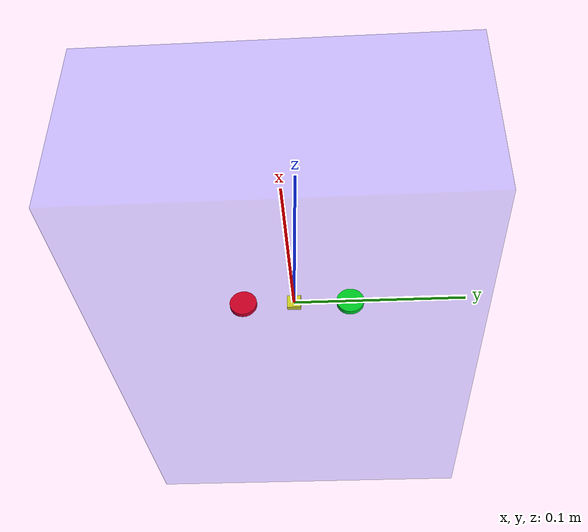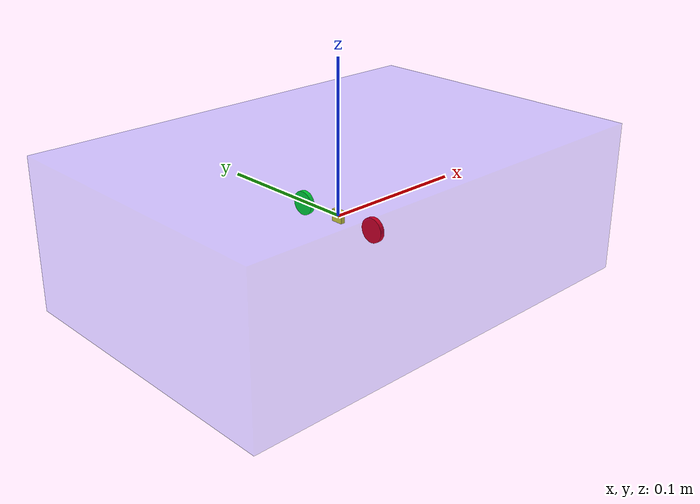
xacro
<?xml version="1.0"?>
<robot name="m4_51s" xmlns:xacro="http://www.ros.org/wiki/xacro">

  <!-- Xacro parameters for dynamic configuration -->
  <xacro:arg name="camera_x" default="0.0"/>
  <xacro:arg name="camera_y" default="0.0"/>
  <xacro:arg name="camera_z" default="0.0"/>
  <xacro:arg name="camera_roll" default="0.0"/>
  <xacro:arg name="camera_pitch" default="0.0"/>
  <xacro:arg name="camera_yaw" default="0.0"/>

  <!-- Material definitions -->
  <material name="blue">
    <color rgba="0.0 0.0 1.0 0.2"/>
  </material>

  <material name="gray">
    <color rgba="0.5 0.5 0.5 0.3"/>
  </material>

  <material name="cyan">
    <color rgba="0.0 0.5 0.5 0.3"/>
  </material>

  <material name="red">
    <color rgba="1.0 0.0 0.0 1.0"/>
  </material>

  <material name="green">
    <color rgba="0.0 1.0 0.0 1.0"/>
  </material>

  <material name="yellow">
    <color rgba="1.0 1.0 0.0 1.0"/>
  </material>

  <!-- camera Link -->
  <link name="camera_link">
    <visual>
      <geometry>
        <box size="0.3 0.2 0.1"/>
      </geometry>
      <material name="blue"/>
    </visual>
  </link>

  <!-- InuSensor Main Link (RealSense D435 치수: 90mm × 25mm × 25mm) -->
  <link name="inusensor">
    <visual>
      <geometry>
        <box size="0.090 0.025 0.025"/>
      </geometry>
      <material name="cyan"/>
    </visual>
    <collision>
      <geometry>
        <box size="0.090 0.025 0.025"/>
      </geometry>
    </collision>
  </link>

  <!-- Camera Link (intermediate frame) -->
  <link name="camera">
    <visual>
      <geometry>
        <box size="0.095 0.030 0.030"/>
      </geometry>
      <material name="gray"/>
    </visual>
    <collision>
      <geometry>
        <box size="0.095 0.030 0.030"/>
      </geometry>
    </collision>
  </link>

  <!-- Joint: camera_link to camera (카메라 좌표계 -> 로봇 좌표계 회전) -->
  <joint name="base_to_camera" type="fixed">
    <parent link="camera_link"/>
    <child link="camera"/>
    <!-- 카메라 좌표계를 로봇 좌표계에 맞게 회전 -->
    <!-- Camera: Z=forward, X=right, Y=down -->
    <!-- Robot:  X=forward, Y=left,  Z=up   -->
  </joint>

  <!-- Joint: camera to inusensor -->
  <joint name="camera_to_inusensor" type="fixed">
    <parent link="camera"/>
    <child link="inusensor"/>
    <!-- InuSensor는 camera 프레임 중심에 위치 -->
    <origin xyz="$(arg camera_x) $(arg camera_y) $(arg camera_z)"
            rpy="-1.57079632679 0.0 -1.57079632679"/>
  </joint>

  <!-- Depth Camera Link (센서 0 - Right Camera - 왼쪽 끝, 빨간색) -->
  <link name="inusensor_depth">
    <visual>
      <geometry>
        <cylinder radius="0.008" length="0.003"/>
      </geometry>
      <material name="red"/>
    </visual>
  </link>

  <!-- Joint: inusensor to depth (Right Camera - 왼쪽 끝) -->
  <joint name="inusensor_to_depth" type="fixed">
    <parent link="inusensor"/>
    <child link="inusensor_depth"/>
    <!-- Right Camera를 왼쪽 끝으로 배치 (센서 중심에서 -30mm) -->
    <origin xyz="0.030 0.0 0.0" rpy="0.0 0.0 0.0"/>
  </joint>

  <!-- Left Camera Link (센서 1 - Left Camera - 가운데, 파란색) -->
  <link name="inusensor_left">
    <visual>
      <geometry>
        <cylinder radius="0.008" length="0.003"/>
      </geometry>
      <material name="blue"/>
    </visual>
  </link>

  <!-- Joint: inusensor to left camera (가운데) -->
  <joint name="inusensor_to_left" type="fixed">
    <parent link="inusensor"/>
    <child link="inusensor_left"/>
    <!-- Left Camera를 가운데 배치 -->
    <!-- Right 기준 +48mm이므로: -30 + 48 = +18mm -->
    <origin xyz="0.018 -0.000521 -0.000156"
            rpy="0.002729 0.003240 -0.010860"/>
  </joint>

  <!-- RGB Camera Link (센서 2 - Mono Camera - 오른쪽 끝, 초록색) -->
  <link name="inusensor_rgb">
    <visual>
      <geometry>
        <cylinder radius="0.008" length="0.003"/>
      </geometry>
      <material name="green"/>
    </visual>
  </link>

  <!-- Joint: inusensor to rgb (오른쪽 끝) -->
  <joint name="inusensor_to_rgb" type="fixed">
    <parent link="inusensor"/>
    <child link="inusensor_rgb"/>
    <!-- RGB Camera를 오른쪽 끝으로 배치 -->
    <!-- Right 기준 +63mm이므로: -30 + 63 = +33mm -->
    <origin xyz="-0.033 0.001272 0.001133"
          rpy="0.002679 -0.014789 0.021351"/>

  </joint>

  <!-- IMU Link -->
  <link name="inusensor_imu">
    <visual>
      <geometry>
        <box size="0.008 0.008 0.003"/>
      </geometry>
      <material name="yellow"/>
    </visual>
  </link>

  <!-- Joint: inusensor to imu -->
  <joint name="inusensor_to_imu" type="fixed">
    <parent link="inusensor"/>
    <child link="inusensor_imu"/>
    <!-- IMU 오프셋 (거의 기준점과 동일) -->
    <!-- T: [0.0078125, 0, 0] mm ≈ [0.000008, 0, 0] m (무시할 수 있는 수준) -->
    <origin xyz="0.000008 0.0 0.0" rpy="0.0 0.0 0.0"/>
  </joint>

  <!-- Base Frame Link (inusensor_base) - TF 발행용 -->
  <link name="inusensor_base">
  </link>

  <!-- Joint: inusensor to base frame -->
  <joint name="inusensor_to_base" type="fixed">
    <parent link="inusensor"/>
    <child link="inusensor_base"/>
    <origin xyz="0.0 0.0 0.0" rpy="0.0 0.0 0.0"/>
  </joint>

</robot>
